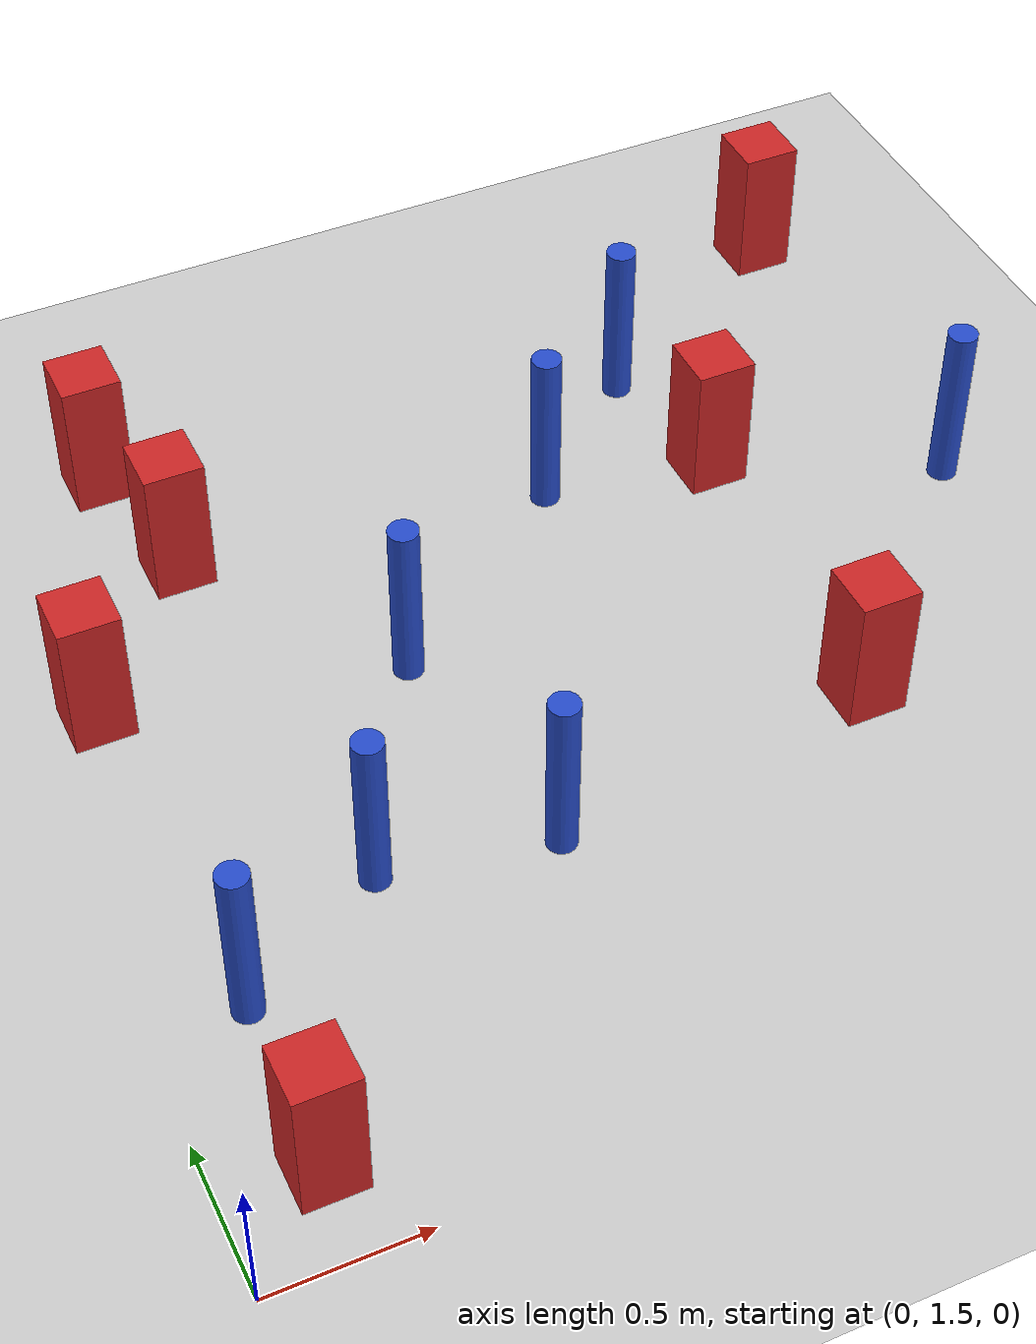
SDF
<sdf version="1.6">
 <world name="default">
  <model name="ground_plane">
   <static>1</static>
   <link name="link">
    <collision name="collision">
     <geometry><plane><normal>0 0 1</normal><size>100 100</size></plane></geometry>
     <surface><friction><ode><mu>100</mu><mu2>50</mu2></ode></friction></surface>
    </collision>
    <visual name="visual">
     <cast_shadows>0</cast_shadows>
     <geometry><plane><normal>0 0 1</normal><size>100 100</size></plane></geometry>
     <material>
      <ambient>1.0 1.0 1.0 1.0</ambient>
      <diffuse>0.8 0.8 0.8 1.0</diffuse>
      <specular>0.01 0.01 0.01 1.000000</specular>
     </material>
    </visual>
   </link>
  </model>
  <model name="pole_obstacle1">
   <static>true</static>
   <pose>3.22779918112 3.45898310527 7.38925637345e-09 -8.47170692798e-08 1.24976764939e-08 -1.74513093025e-07</pose>
   <link name="link">
    <pose>0 0 0.3 0 -0 0</pose>
    <inertial>
     <mass>1</mass>
     <inertia><ixx>0.145833</ixx><ixy>0</ixy><ixz>0</ixz><iyy>0.145833</iyy><iyz>0</iyz><izz>0.125</izz></inertia>
    </inertial>
    <collision name="collision">
     <geometry><cylinder><radius>0.05</radius><length>.6</length></cylinder></geometry>
    </collision>
    <visual name="visual">
     <geometry><cylinder><radius>0.05</radius><length>.6</length></cylinder></geometry>
     <material>
      <script><name>Gazebo/Blue</name><uri>file://media/materials/scripts/gazebo.material</uri></script>
     </material>
    </visual>
   </link>
  </model>
  <model name="pole_obstacle14">
   <static>true</static>
   <pose>1.94766628035 3.90778660255 7.38925637345e-09 -8.47170692799e-08 1.24976765053e-08 -1.74513093017e-07</pose>
   <link name="link">
    <pose>0 0 0.3 0 -0 0</pose>
    <inertial>
     <mass>1</mass>
     <inertia><ixx>0.145833</ixx><ixy>0</ixy><ixz>0</ixz><iyy>0.145833</iyy><iyz>0</iyz><izz>0.125</izz></inertia>
    </inertial>
    <collision name="collision">
     <geometry><cylinder><radius>0.05</radius><length>.6</length></cylinder></geometry>
    </collision>
    <visual name="visual">
     <geometry><cylinder><radius>0.05</radius><length>.6</length></cylinder></geometry>
     <material>
      <script><name>Gazebo/Blue</name><uri>file://media/materials/scripts/gazebo.material</uri></script>
     </material>
    </visual>
   </link>
  </model>
  <model name="square_post_obstacle41">
   <static>true</static>
   <pose>0.294179833933 1.78256472612 1.91545236811e-07 -7.35059704564e-06 1.12565212e-07 2.39332434364e-05</pose>
   <link name="link">
    <pose>0 0 0.25 0 -0 0</pose>
    <inertial>
     <mass>100</mass>
     <inertia>
      <ixx>0.166667</ixx>
      <ixy>0</ixy>
      <ixz>0</ixz>
      <iyy>0.166667</iyy>
      <iyz>0</iyz>
      <izz>0.166667</izz>
     </inertia>
    </inertial>
    <collision name="collision"><geometry><box><size>.2 .2 .5</size></box></geometry></collision>
    <visual name="visual">
     <geometry><box><size>.2 .2 .5</size></box></geometry>
     <material>
      <script><name>Gazebo/Red</name><uri>file://media/materials/scripts/gazebo.material</uri></script>
     </material>
    </visual>
   </link>
  </model>
  <model name="pole_obstacle55">
   <static>true</static>
   <pose>0.297352679253 2.3528883768 7.38925637345e-09 -8.471706928e-08 1.24976765078e-08 -1.74513093017e-07</pose>
   <link name="link">
    <pose>0 0 0.3 0 -0 0</pose>
    <inertial>
     <mass>1</mass>
     <inertia><ixx>0.145833</ixx><ixy>0</ixy><ixz>0</ixz><iyy>0.145833</iyy><iyz>0</iyz><izz>0.125</izz></inertia>
    </inertial>
    <collision name="collision">
     <geometry><cylinder><radius>0.05</radius><length>.6</length></cylinder></geometry>
    </collision>
    <visual name="visual">
     <geometry><cylinder><radius>0.05</radius><length>.6</length></cylinder></geometry>
     <material>
      <script><name>Gazebo/Blue</name><uri>file://media/materials/scripts/gazebo.material</uri></script>
     </material>
    </visual>
   </link>
  </model>
  <model name="pole_obstacle68">
   <static>true</static>
   <pose>2.41578329187 4.30963766332 7.38925637345e-09 -8.47170692798e-08 1.24976765033e-08 -1.74513093019e-07</pose>
   <link name="link">
    <pose>0 0 0.3 0 -0 0</pose>
    <inertial>
     <mass>1</mass>
     <inertia><ixx>0.145833</ixx><ixy>0</ixy><ixz>0</ixz><iyy>0.145833</iyy><iyz>0</iyz><izz>0.125</izz></inertia>
    </inertial>
    <collision name="collision">
     <geometry><cylinder><radius>0.05</radius><length>.6</length></cylinder></geometry>
    </collision>
    <visual name="visual">
     <geometry><cylinder><radius>0.05</radius><length>.6</length></cylinder></geometry>
     <material>
      <script><name>Gazebo/Blue</name><uri>file://media/materials/scripts/gazebo.material</uri></script>
     </material>
    </visual>
   </link>
  </model>
  <model name="square_post_obstacle100">
   <static>true</static>
   <pose>0.603002228556 4.59201754902 1.91545236811e-07 -7.35059704564e-06 1.12565212e-07 2.39332434364e-05</pose>
   <link name="link">
    <pose>0 0 0.25 0 -0 0</pose>
    <inertial>
     <mass>100</mass>
     <inertia>
      <ixx>0.166667</ixx>
      <ixy>0</ixy>
      <ixz>0</ixz>
      <iyy>0.166667</iyy>
      <iyz>0</iyz>
      <izz>0.166667</izz>
     </inertia>
    </inertial>
    <collision name="collision"><geometry><box><size>.2 .2 .5</size></box></geometry></collision>
    <visual name="visual">
     <geometry><box><size>.2 .2 .5</size></box></geometry>
     <material>
      <script><name>Gazebo/Red</name><uri>file://media/materials/scripts/gazebo.material</uri></script>
     </material>
    </visual>
   </link>
  </model>
  <model name="pole_obstacle120">
   <static>true</static>
   <pose>1.2178212107 3.3676272738 7.38925637345e-09 -8.47170692799e-08 1.24976765053e-08 -1.74513093017e-07</pose>
   <link name="link">
    <pose>0 0 0.3 0 -0 0</pose>
    <inertial>
     <mass>1</mass>
     <inertia><ixx>0.145833</ixx><ixy>0</ixy><ixz>0</ixz><iyy>0.145833</iyy><iyz>0</iyz><izz>0.125</izz></inertia>
    </inertial>
    <collision name="collision">
     <geometry><cylinder><radius>0.05</radius><length>.6</length></cylinder></geometry>
    </collision>
    <visual name="visual">
     <geometry><cylinder><radius>0.05</radius><length>.6</length></cylinder></geometry>
     <material>
      <script><name>Gazebo/Blue</name><uri>file://media/materials/scripts/gazebo.material</uri></script>
     </material>
    </visual>
   </link>
  </model>
  <model name="square_post_obstacle117">
   <static>true</static>
   <pose>2.45211920488 2.67253201076 1.91545236811e-07 -7.35059704564e-06 1.12565212e-07 2.39332434364e-05</pose>
   <link name="link">
    <pose>0 0 0.25 0 -0 0</pose>
    <inertial>
     <mass>100</mass>
     <inertia>
      <ixx>0.166667</ixx>
      <ixy>0</ixy>
      <ixz>0</ixz>
      <iyy>0.166667</iyy>
      <iyz>0</iyz>
      <izz>0.166667</izz>
     </inertia>
    </inertial>
    <collision name="collision"><geometry><box><size>.2 .2 .5</size></box></geometry></collision>
    <visual name="visual">
     <geometry><box><size>.2 .2 .5</size></box></geometry>
     <material>
      <script><name>Gazebo/Red</name><uri>file://media/materials/scripts/gazebo.material</uri></script>
     </material>
    </visual>
   </link>
  </model>
  <model name="square_post_obstacle122">
   <static>true</static>
   <pose>3.21371380845 4.79155478431 1.91545236811e-07 -7.35059704564e-06 1.12565212e-07 2.39332434364e-05</pose>
   <link name="link">
    <pose>0 0 0.25 0 -0 0</pose>
    <inertial>
     <mass>100</mass>
     <inertia>
      <ixx>0.166667</ixx>
      <ixy>0</ixy>
      <ixz>0</ixz>
      <iyy>0.166667</iyy>
      <iyz>0</iyz>
      <izz>0.166667</izz>
     </inertia>
    </inertial>
    <collision name="collision"><geometry><box><size>.2 .2 .5</size></box></geometry></collision>
    <visual name="visual">
     <geometry><box><size>.2 .2 .5</size></box></geometry>
     <material>
      <script><name>Gazebo/Red</name><uri>file://media/materials/scripts/gazebo.material</uri></script>
     </material>
    </visual>
   </link>
  </model>
  <model name="pole_obstacle148">
   <static>true</static>
   <pose>0.797809882655 2.63392756254 7.38925637345e-09 -8.47170692799e-08 1.2497676509e-08 -1.74513093016e-07</pose>
   <link name="link">
    <pose>0 0 0.3 0 -0 0</pose>
    <inertial>
     <mass>1</mass>
     <inertia><ixx>0.145833</ixx><ixy>0</ixy><ixz>0</ixz><iyy>0.145833</iyy><iyz>0</iyz><izz>0.125</izz></inertia>
    </inertial>
    <collision name="collision">
     <geometry><cylinder><radius>0.05</radius><length>.6</length></cylinder></geometry>
    </collision>
    <visual name="visual">
     <geometry><cylinder><radius>0.05</radius><length>.6</length></cylinder></geometry>
     <material>
      <script><name>Gazebo/Blue</name><uri>file://media/materials/scripts/gazebo.material</uri></script>
     </material>
    </visual>
   </link>
  </model>
  <model name="square_post_obstacle169">
   <static>true</static>
   <pose>0.706510010046 4.08889011199 1.91545236811e-07 -7.35059704564e-06 1.12565212e-07 2.39332434364e-05</pose>
   <link name="link">
    <pose>0 0 0.25 0 -0 0</pose>
    <inertial>
     <mass>100</mass>
     <inertia>
      <ixx>0.166667</ixx>
      <ixy>0</ixy>
      <ixz>0</ixz>
      <iyy>0.166667</iyy>
      <iyz>0</iyz>
      <izz>0.166667</izz>
     </inertia>
    </inertial>
    <collision name="collision"><geometry><box><size>.2 .2 .5</size></box></geometry></collision>
    <visual name="visual">
     <geometry><box><size>.2 .2 .5</size></box></geometry>
     <material>
      <script><name>Gazebo/Red</name><uri>file://media/materials/scripts/gazebo.material</uri></script>
     </material>
    </visual>
   </link>
  </model>
  <model name="pole_obstacle188">
   <static>true</static>
   <pose>1.35197945201 2.5338834313 7.38925637345e-09 -8.47170692799e-08 1.24976765053e-08 -1.74513093017e-07</pose>
   <link name="link">
    <pose>0 0 0.3 0 -0 0</pose>
    <inertial>
     <mass>1</mass>
     <inertia><ixx>0.145833</ixx><ixy>0</ixy><ixz>0</ixz><iyy>0.145833</iyy><iyz>0</iyz><izz>0.125</izz></inertia>
    </inertial>
    <collision name="collision">
     <geometry><cylinder><radius>0.05</radius><length>.6</length></cylinder></geometry>
    </collision>
    <visual name="visual">
     <geometry><cylinder><radius>0.05</radius><length>.6</length></cylinder></geometry>
     <material>
      <script><name>Gazebo/Blue</name><uri>file://media/materials/scripts/gazebo.material</uri></script>
     </material>
    </visual>
   </link>
  </model>
  <model name="square_post_obstacle197">
   <static>true</static>
   <pose>0.258945892976 3.56522572074 1.91545236811e-07 -7.35059704564e-06 1.12565212e-07 2.39332434364e-05</pose>
   <link name="link">
    <pose>0 0 0.25 0 -0 0</pose>
    <inertial>
     <mass>100</mass>
     <inertia>
      <ixx>0.166667</ixx>
      <ixy>0</ixy>
      <ixz>0</ixz>
      <iyy>0.166667</iyy>
      <iyz>0</iyz>
      <izz>0.166667</izz>
     </inertia>
    </inertial>
    <collision name="collision"><geometry><box><size>.2 .2 .5</size></box></geometry></collision>
    <visual name="visual">
     <geometry><box><size>.2 .2 .5</size></box></geometry>
     <material>
      <script><name>Gazebo/Red</name><uri>file://media/materials/scripts/gazebo.material</uri></script>
     </material>
    </visual>
   </link>
  </model>
  <model name="square_post_obstacle214">
   <static>true</static>
   <pose>2.50578319723 3.80711182145 1.91545236811e-07 -7.35059704564e-06 1.12565212e-07 2.39332434364e-05</pose>
   <link name="link">
    <pose>0 0 0.25 0 -0 0</pose>
    <inertial>
     <mass>100</mass>
     <inertia>
      <ixx>0.166667</ixx>
      <ixy>0</ixy>
      <ixz>0</ixz>
      <iyy>0.166667</iyy>
      <iyz>0</iyz>
      <izz>0.166667</izz>
     </inertia>
    </inertial>
    <collision name="collision"><geometry><box><size>.2 .2 .5</size></box></geometry></collision>
    <visual name="visual">
     <geometry><box><size>.2 .2 .5</size></box></geometry>
     <material>
      <script><name>Gazebo/Red</name><uri>file://media/materials/scripts/gazebo.material</uri></script>
     </material>
    </visual>
   </link>
  </model>
 </world>
</sdf>
